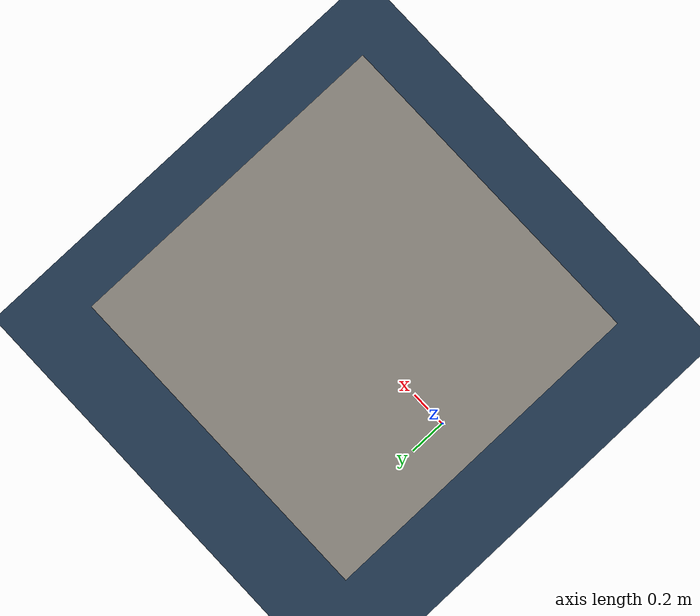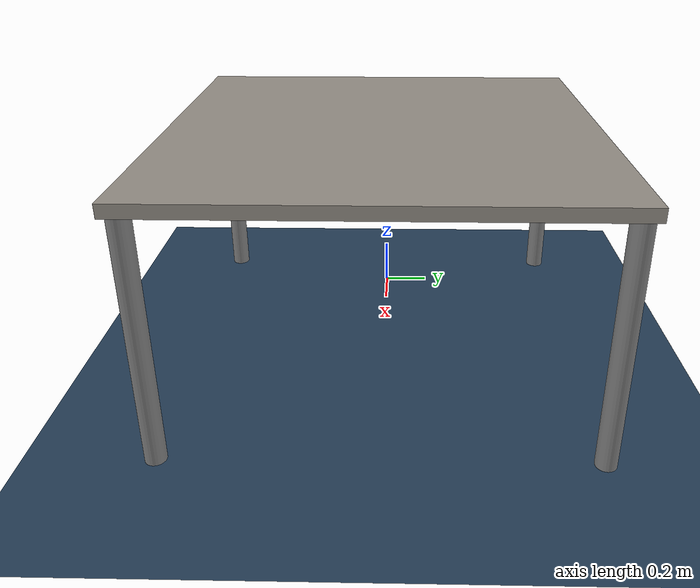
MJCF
<mujoco model="cluttered scene">

  <compiler angle="radian" meshdir="assets" texturedir="assets" />

  <option iterations="50" timestep="0.001" solver="PGS" cone="elliptic" impratio="10" gravity="0 0 -9.81"/>

  <statistic center="0 0 1.050" extent="0.6"/>

  <visual>
    <headlight diffuse="0.3 0.3 0.3" ambient="0.3 0.3 0.3" specular="0 0 0"/>
    <rgba haze="0.15 0.25 0.35 1"/>
  </visual>

  <asset>
    <texture type="skybox" builtin="gradient" rgb1="0.3 0.5 0.7" rgb2="0 0 0" width="512" height="3072"/>
    <texture type="2d" name="groundplane" builtin="checker" mark="edge" rgb1="0.2 0.3 0.4" rgb2="0.1 0.2 0.3" markrgb="0.8 0.8 0.8" width="300" height="300"/>
    <texture type="2d" name="marble2d" file="marble.png" />
    <texture type="cube" name="marblecube" file="marble.png" />
    <texture name="texture:object" file="block.png" gridsize="3 4" gridlayout=".U..LFRB.D.."></texture>
    <texture name="texture:hidden" file="block_hidden.png" gridsize="3 4" gridlayout=".U..LFRB.D.."></texture>
    <texture type="2d" file="interbotix_black.png"/>
    <material name="material:object" texture="texture:object" specular="1" shininess="0.3" reflectance="0"></material>
    <material name="material:hidden" texture="texture:hidden" specular="1" shininess="0.3" reflectance="0"></material>
    <material name="material:target" texture="texture:object" specular="1" shininess="0.3" reflectance="0" rgba="1 1 1 0.5"></material>
    <material name="groundplane" texture="groundplane" texuniform="true" texrepeat="5 5" reflectance="0.2"/>
    <material name="table2d" texture="marble2d" reflectance="0.3" rgba="0.8 0.8 0.8 1" />
    <material name="tablecube" texture="marblecube" rgba="0.8 0.8 0.8 1" />
    <material name="black" texture="interbotix_black"/>
    <material name="visualgeom" rgba="0.5 0.9 0.2 1" />
    <mesh file="vx300s_1_base.stl" scale="0.001 0.001 0.001"/>
    <mesh file="vx300s_2_shoulder.stl" scale="0.001 0.001 0.001"/>
    <mesh file="vx300s_3_upper_arm.stl" scale="0.001 0.001 0.001"/>
    <mesh file="vx300s_4_upper_forearm.stl" scale="0.001 0.001 0.001"/>
    <mesh file="vx300s_5_lower_forearm.stl" scale="0.001 0.001 0.001"/>
    <mesh file="vx300s_6_wrist.stl" scale="0.001 0.001 0.001"/>
    <mesh file="vx300s_7_gripper.stl" scale="0.001 0.001 0.001"/>
    <mesh file="vx300s_8_gripper_prop.stl" scale="0.001 0.001 0.001"/>
    <mesh file="vx300s_9_gripper_bar.stl" scale="0.001 0.001 0.001"/>
    <mesh file="vx300s_10_gripper_finger.stl" scale="0.001 0.001 0.001"/>
    <mesh name="base_link" file="base_link.STL" />
    <mesh name="right_thumb_1" file="right_thumb_1.STL" />
    <mesh name="right_thumb_2" file="right_thumb_2.STL" />
    <mesh name="right_thumb_3" file="right_thumb_3.STL" />
    <mesh name="right_thumb_4" file="right_thumb_4.STL" />
    <mesh name="right_index_1" file="right_index_1.STL" />
    <mesh name="right_index_2" file="right_index_2.STL" />
    <mesh name="right_middle_1" file="right_middle_1.STL" />
    <mesh name="right_middle_2" file="right_middle_2.STL" />
    <mesh name="right_ring_1" file="right_ring_1.STL" />
    <mesh name="right_ring_2" file="right_ring_2.STL" />
    <mesh name="right_little_1" file="right_little_1.STL" />
    <mesh name="right_little_2" file="right_little_2.STL" />
  </asset>

  <default>
    <default class="vx300s">
      <joint limited="true" axis="0 1 0"/>
      <position forcerange="-35 35"/>
      <default class="waist">
        <joint limited="true" axis="0 0 1" range="-3.14158 3.14158" damping="2.86"/>
        <position ctrlrange="-3.14158 3.14158" kp="25"/>
      </default>
      <default class="shoulder">
        <joint limited="true" range="-1.85005 1.25664" armature="0.004" frictionloss="0.06" damping="6.25"/>
        <position ctrlrange="-1.85005 1.25664" kp="76" forcerange="-57 57"/>
      </default>
      <default class="elbow">
        <joint limited="true" range="-1.76278 1.6057" armature="0.072" frictionloss="1.74" damping="8.15"/>
        <position ctrlrange="-1.76278 1.6057" kp="106" forcerange="-25 25"/>
      </default>
      <default class="forearm_roll">
        <joint limited="true" axis="1 0 0" range="-3.14158 3.14158" armature="0.060" damping="3.07"/>
        <position ctrlrange="-3.14158 3.14158" kp="35" forcerange="-10 10"/>
      </default>
      <default class="wrist_angle">
        <joint limited="true" range="-1.8675 2.23402" damping="1.18"/>
        <position ctrlrange="-1.8675 2.23402" kp="8"/>
      </default>
      <default class="wrist_rotate">
        <joint limited="true" axis="1 0 0" range="-3.14158 3.14158" damping="0.78"/>
        <position ctrlrange="-3.14158 3.14158" kp="7"/>
      </default>
      <default class="visual">
        <geom type="mesh" contype="0" conaffinity="0" density="0" group="2" material="black"/>
      </default>
      <default class="collision">
        <geom group="3" type="mesh"/>
      </default>
    </default>
    <joint damping="0.01" armature="0.01" frictionloss="0.01" />
    <motor ctrllimited="true" />
    <equality solref="0.001 2" />
    <default class="visualgeom">
      <geom material="visualgeom" condim="1" contype="0" conaffinity="0" />
    </default>
    <default class="obj_visual">
      <geom group="2" type="mesh" contype="0" conaffinity="0"/>
    </default>
    <default class="obj_collision">
      <geom group="3" type="mesh"/>
    </default>
  </default>

  <worldbody>
    <light pos="0 0 1.5" dir="0 0 -1" directional="true"/>
    <geom name="floor" size="0 0 0.05" type="plane" material="groundplane"/>

    <!-- ======= TABLE ======= -->
    <body name="table" pos="0.65 0 0">
      <!-- Plane has better contacts -->
      <geom size="0.85 0.85 0.025" pos="0 0 1" type="box" material="tablecube" />
      <geom size="0.04 0.5" pos="0.8 0.8 0.524" quat="0 1 0 0" type="cylinder" contype="0" conaffinity="0" />
      <geom size="0.04 0.5" pos="-0.8 0.8 0.524" quat="0 1 0 0" type="cylinder" contype="0" conaffinity="0" />
      <geom size="0.04 0.5" pos="0.8 -0.8 0.524" quat="0 1 0 0" type="cylinder" contype="0" conaffinity="0" />
      <geom size="0.04 0.5" pos="-0.8 -0.8 0.524" quat="0 1 0 0" type="cylinder" contype="0" conaffinity="0" />
    </body>

    <!-- ======= OBJECT ======= -->

  </worldbody>
</mujoco>
